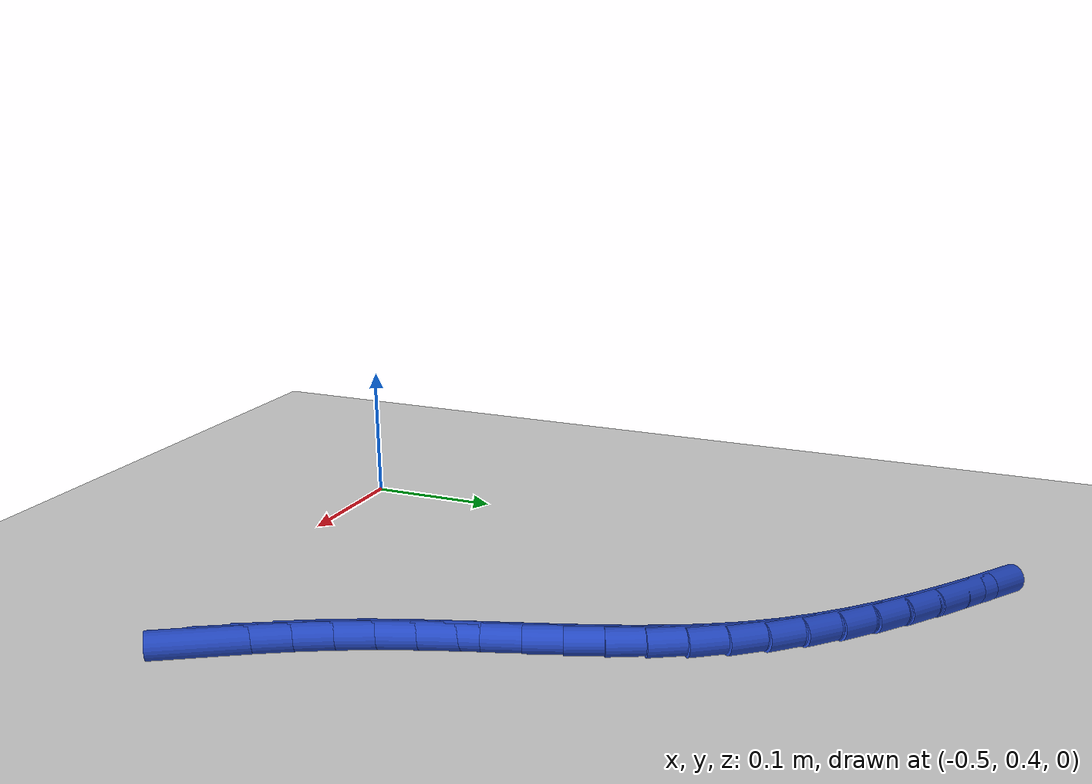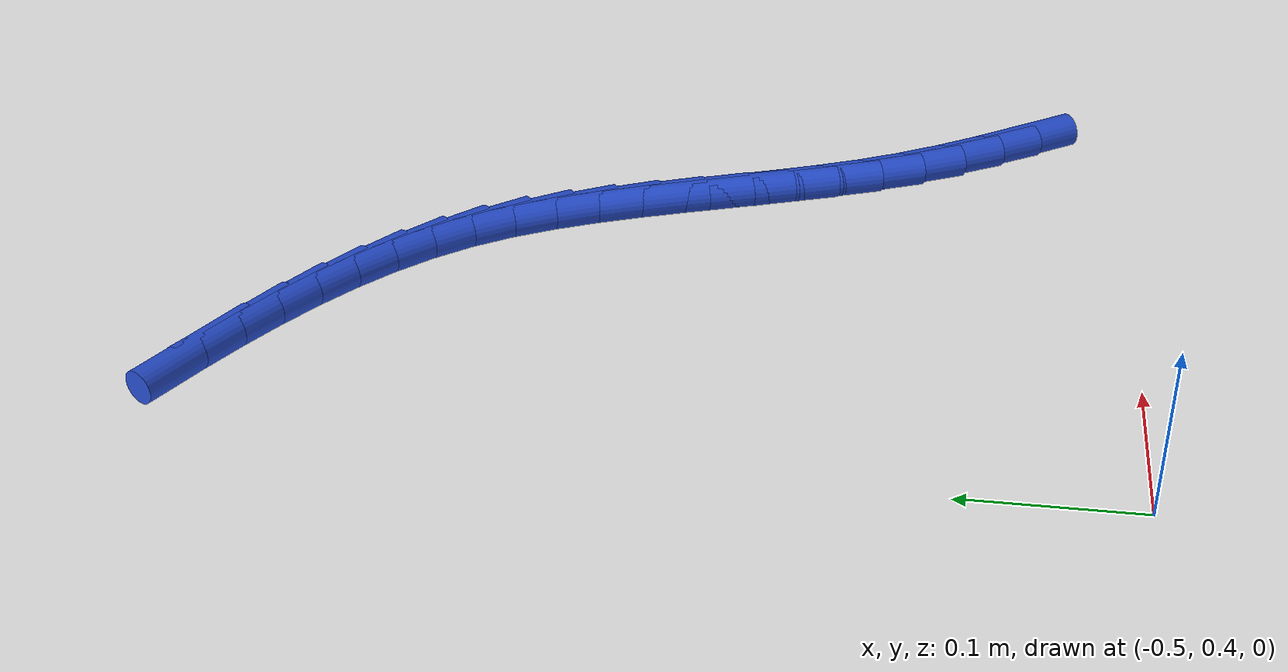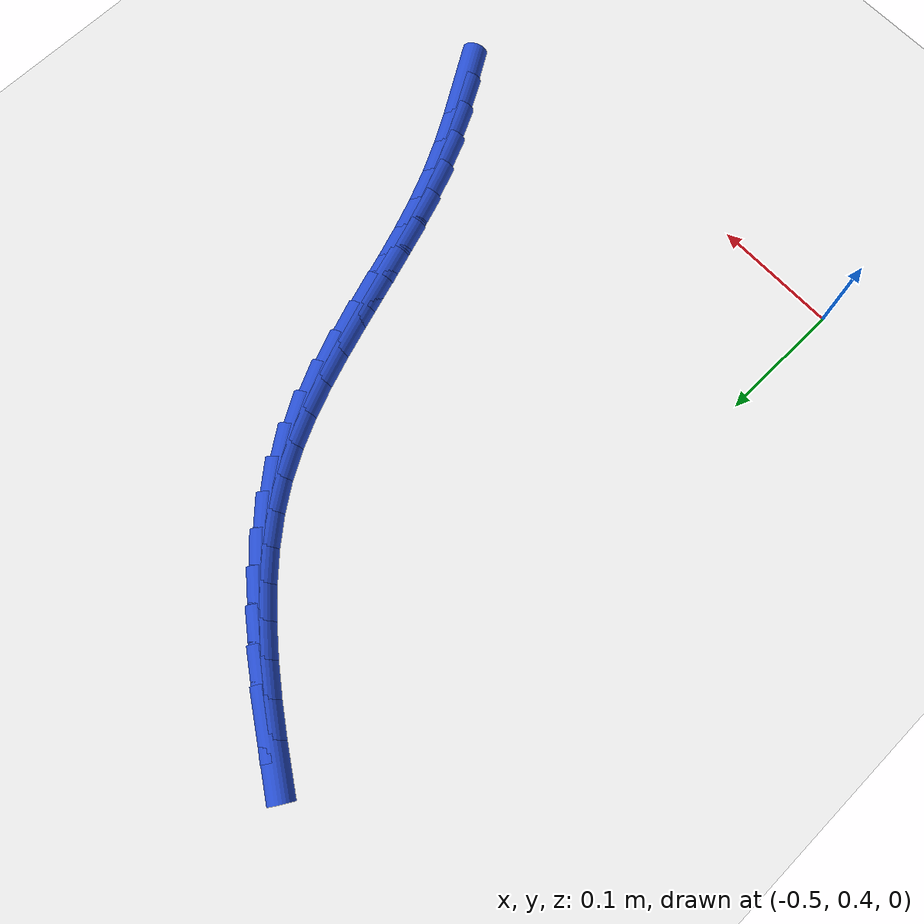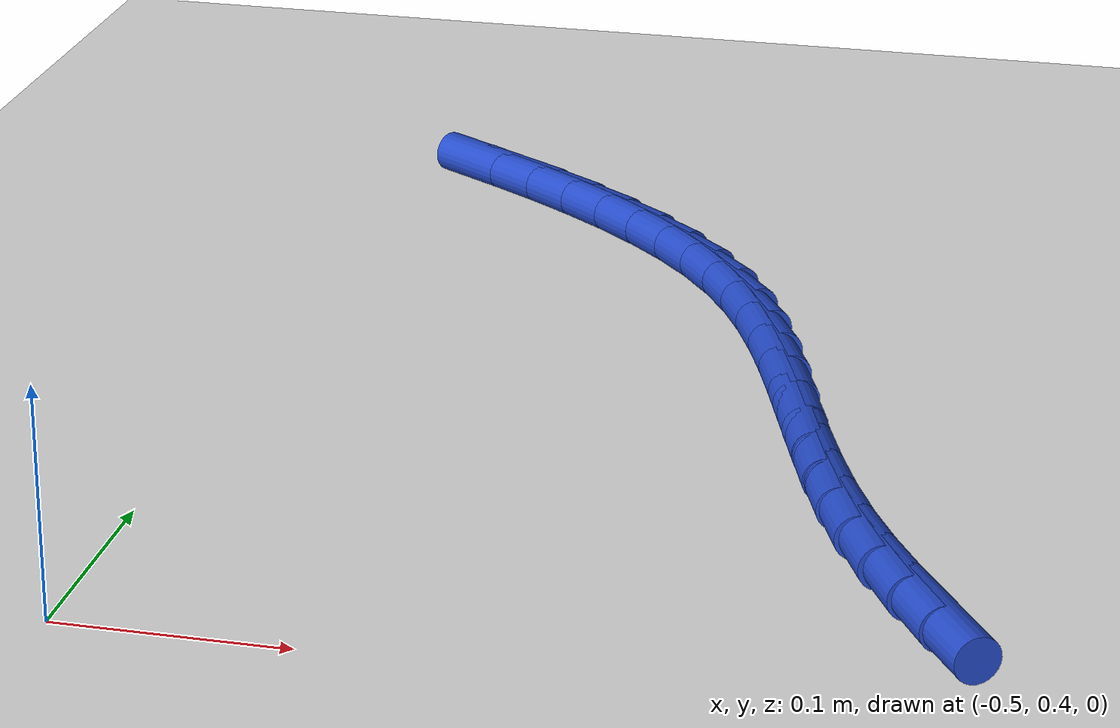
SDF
<sdf version="1.6">
 <world name="default">
  <model name="ground_plane">
   <static>1</static>
   <link name="link">
    <collision name="collision">
     <geometry><plane><normal>0 0 1</normal><size>100 100</size></plane></geometry>
     <surface><friction><ode><mu>100</mu><mu2>50</mu2></ode></friction></surface>
    </collision>
    <visual name="visual">
     <cast_shadows>0</cast_shadows>
     <geometry><plane><normal>0 0 1</normal><size>100 100</size></plane></geometry>
     <material>
      <script><uri>file://media/materials/scripts/gazebo.material</uri><name>Gazebo/WhiteGlow</name></script>
     </material>
    </visual>
   </link>
  </model>
  <model name="line">
   <link name="link_19">
    <pose>-0.1650506412324501 0.46543690449173725 0.01 0 1.57 -1.0102571729452525</pose>
    <collision name="collision">
     <geometry><cylinder><radius>0.01</radius><length>0.08</length></cylinder></geometry>
    </collision>
    <visual name="visual">
     <material>
      <script><name>Gazebo/Blue</name><uri>file://media/materials/scripts/gazebo.material</uri></script>
     </material>
     <geometry><cylinder><radius>0.01</radius><length>0.08</length></cylinder></geometry>
    </visual>
   </link>
   <link name="link_20">
    <pose>-0.1793875184568729 0.4882772063053949 0.01 0 1.57 -1.0474625991430766</pose>
    <collision name="collision">
     <geometry><cylinder><radius>0.01</radius><length>0.08</length></cylinder></geometry>
    </collision>
    <visual name="visual">
     <material>
      <script><name>Gazebo/Blue</name><uri>file://media/materials/scripts/gazebo.material</uri></script>
     </material>
     <geometry><cylinder><radius>0.01</radius><length>0.08</length></cylinder></geometry>
    </visual>
   </link>
   <link name="link_21">
    <pose>-0.19284925741167855 0.5116079007137067 0.01 0 1.57 -1.0947844968803022</pose>
    <collision name="collision">
     <geometry><cylinder><radius>0.01</radius><length>0.08</length></cylinder></geometry>
    </collision>
    <visual name="visual">
     <material>
      <script><name>Gazebo/Blue</name><uri>file://media/materials/scripts/gazebo.material</uri></script>
     </material>
     <geometry><cylinder><radius>0.01</radius><length>0.08</length></cylinder></geometry>
    </visual>
   </link>
   <link name="link_22">
    <pose>-0.20518962186332285 0.5355441075858185 0.01 0 1.57 -1.15091348865228</pose>
    <collision name="collision">
     <geometry><cylinder><radius>0.01</radius><length>0.08</length></cylinder></geometry>
    </collision>
    <visual name="visual">
     <material>
      <script><name>Gazebo/Blue</name><uri>file://media/materials/scripts/gazebo.material</uri></script>
     </material>
     <geometry><cylinder><radius>0.01</radius><length>0.08</length></cylinder></geometry>
    </visual>
   </link>
   <link name="link_23">
    <pose>-0.21619031697764615 0.560185473931487 0.01 0 1.57 -1.201039827232103</pose>
    <collision name="collision">
     <geometry><cylinder><radius>0.01</radius><length>0.08</length></cylinder></geometry>
    </collision>
    <visual name="visual">
     <material>
      <script><name>Gazebo/Blue</name><uri>file://media/materials/scripts/gazebo.material</uri></script>
     </material>
     <geometry><cylinder><radius>0.01</radius><length>0.08</length></cylinder></geometry>
    </visual>
   </link>
   <link name="link_24">
    <pose>-0.22597864702055695 0.5854402674309478 0.01 0 1.57 -1.2355131958768812</pose>
    <collision name="collision">
     <geometry><cylinder><radius>0.01</radius><length>0.08</length></cylinder></geometry>
    </collision>
    <visual name="visual">
     <material>
      <script><name>Gazebo/Blue</name><uri>file://media/materials/scripts/gazebo.material</uri></script>
     </material>
     <geometry><cylinder><radius>0.01</radius><length>0.08</length></cylinder></geometry>
    </visual>
   </link>
   <link name="link_25">
    <pose>-0.23491516458343212 0.6110875919207465 0.01 0 1.57 -1.2544896879528846</pose>
    <collision name="collision">
     <geometry><cylinder><radius>0.01</radius><length>0.08</length></cylinder></geometry>
    </collision>
    <visual name="visual">
     <material>
      <script><name>Gazebo/Blue</name><uri>file://media/materials/scripts/gazebo.material</uri></script>
     </material>
     <geometry><cylinder><radius>0.01</radius><length>0.08</length></cylinder></geometry>
    </visual>
   </link>
   <link name="link_26">
    <pose>-0.24336479887652204 0.636904127636252 0.01 0 1.57 -1.2581489119808016</pose>
    <collision name="collision">
     <geometry><cylinder><radius>0.01</radius><length>0.08</length></cylinder></geometry>
    </collision>
    <visual name="visual">
     <material>
      <script><name>Gazebo/Blue</name><uri>file://media/materials/scripts/gazebo.material</uri></script>
     </material>
     <geometry><cylinder><radius>0.01</radius><length>0.08</length></cylinder></geometry>
    </visual>
   </link>
   <link name="link_27">
    <pose>-0.25169247911007714 0.6626665548128341 0.01 0 1.57 -1.2463763810399993</pose>
    <collision name="collision">
     <geometry><cylinder><radius>0.01</radius><length>0.08</length></cylinder></geometry>
    </collision>
    <visual name="visual">
     <material>
      <script><name>Gazebo/Blue</name><uri>file://media/materials/scripts/gazebo.material</uri></script>
     </material>
     <geometry><cylinder><radius>0.01</radius><length>0.08</length></cylinder></geometry>
    </visual>
   </link>
   <link name="link_28">
    <pose>-0.2602631344943479 0.6881515536858619 0.01 0 1.57 -1.2187283245380092</pose>
    <collision name="collision">
     <geometry><cylinder><radius>0.01</radius><length>0.08</length></cylinder></geometry>
    </collision>
    <visual name="visual">
     <material>
      <script><name>Gazebo/Blue</name><uri>file://media/materials/scripts/gazebo.material</uri></script>
     </material>
     <geometry><cylinder><radius>0.01</radius><length>0.08</length></cylinder></geometry>
    </visual>
   </link>
   <link name="link_29">
    <pose>-0.2694416942395844 0.7131358044907046 0.01 0 1.57 -1.174496473592519</pose>
    <collision name="collision">
     <geometry><cylinder><radius>0.01</radius><length>0.08</length></cylinder></geometry>
    </collision>
    <visual name="visual">
     <material>
      <script><name>Gazebo/Blue</name><uri>file://media/materials/scripts/gazebo.material</uri></script>
     </material>
     <geometry><cylinder><radius>0.01</radius><length>0.08</length></cylinder></geometry>
    </visual>
   </link>
   <link name="link_30">
    <pose>-0.27959308755603707 0.737395987462731 0.01 0 1.57 -1.1129042188250629</pose>
    <collision name="collision">
     <geometry><cylinder><radius>0.01</radius><length>0.08</length></cylinder></geometry>
    </collision>
    <visual name="visual">
     <material>
      <script><name>Gazebo/Blue</name><uri>file://media/materials/scripts/gazebo.material</uri></script>
     </material>
     <geometry><cylinder><radius>0.01</radius><length>0.08</length></cylinder></geometry>
    </visual>
   </link>
   <link name="link_31">
    <pose>-0.2910822436539564 0.760708782837311 0.01 0 1.57 -1.0334855148487176</pose>
    <collision name="collision">
     <geometry><cylinder><radius>0.01</radius><length>0.08</length></cylinder></geometry>
    </collision>
    <visual name="visual">
     <material>
      <script><name>Gazebo/Blue</name><uri>file://media/materials/scripts/gazebo.material</uri></script>
     </material>
     <geometry><cylinder><radius>0.01</radius><length>0.08</length></cylinder></geometry>
    </visual>
   </link>
   <link name="link_32">
    <pose>-0.30427406672204727 0.7828508858808201 0.01 0 1.57 -0.941879065706948</pose>
    <collision name="collision">
     <geometry><cylinder><radius>0.01</radius><length>0.08</length></cylinder></geometry>
    </collision>
    <visual name="visual">
     <material>
      <script><name>Gazebo/Blue</name><uri>file://media/materials/scripts/gazebo.material</uri></script>
     </material>
     <geometry><cylinder><radius>0.01</radius><length>0.08</length></cylinder></geometry>
    </visual>
   </link>
   <link name="link_33">
    <pose>-0.3194179253571463 0.803668396692331 0.01 0 1.57 -0.856585667237983</pose>
    <collision name="collision">
     <geometry><cylinder><radius>0.01</radius><length>0.08</length></cylinder></geometry>
    </collision>
    <visual name="visual">
     <material>
      <script><name>Gazebo/Blue</name><uri>file://media/materials/scripts/gazebo.material</uri></script>
     </material>
     <geometry><cylinder><radius>0.01</radius><length>0.08</length></cylinder></geometry>
    </visual>
   </link>
   <link name="link_34">
    <pose>-0.3363813264708986 0.8232368082873882 0.01 0 1.57 -0.7818985462586857</pose>
    <collision name="collision">
     <geometry><cylinder><radius>0.01</radius><length>0.08</length></cylinder></geometry>
    </collision>
    <visual name="visual">
     <material>
      <script><name>Gazebo/Blue</name><uri>file://media/materials/scripts/gazebo.material</uri></script>
     </material>
     <geometry><cylinder><radius>0.01</radius><length>0.08</length></cylinder></geometry>
    </visual>
   </link>
   <link name="link_35">
    <pose>-0.3549529935180553 0.841678940678841 0.01 0 1.57 -0.717867649920996</pose>
    <collision name="collision">
     <geometry><cylinder><radius>0.01</radius><length>0.08</length></cylinder></geometry>
    </collision>
    <visual name="visual">
     <material>
      <script><name>Gazebo/Blue</name><uri>file://media/materials/scripts/gazebo.material</uri></script>
     </material>
     <geometry><cylinder><radius>0.01</radius><length>0.08</length></cylinder></geometry>
    </visual>
   </link>
   <link name="link_36">
    <pose>-0.374921649953368 0.8591176138795393 0.01 0 1.57 -0.6641177099415944</pose>
    <collision name="collision">
     <geometry><cylinder><radius>0.01</radius><length>0.08</length></cylinder></geometry>
    </collision>
    <visual name="visual">
     <material>
      <script><name>Gazebo/Blue</name><uri>file://media/materials/scripts/gazebo.material</uri></script>
     </material>
     <geometry><cylinder><radius>0.01</radius><length>0.08</length></cylinder></geometry>
    </visual>
   </link>
   <link name="link_37">
    <pose>-0.39607601923158775 0.8756756479023325 0.01 0 1.57 -0.6200676844374162</pose>
    <collision name="collision">
     <geometry><cylinder><radius>0.01</radius><length>0.08</length></cylinder></geometry>
    </collision>
    <visual name="visual">
     <material>
      <script><name>Gazebo/Blue</name><uri>file://media/materials/scripts/gazebo.material</uri></script>
     </material>
     <geometry><cylinder><radius>0.01</radius><length>0.08</length></cylinder></geometry>
    </visual>
   </link>
   <link name="link_38">
    <pose>-0.4182048248074661 0.8914758627600707 0.01 0 1.57 -0.5850908429274463</pose>
    <collision name="collision">
     <geometry><cylinder><radius>0.01</radius><length>0.08</length></cylinder></geometry>
    </collision>
    <visual name="visual">
     <material>
      <script><name>Gazebo/Blue</name><uri>file://media/materials/scripts/gazebo.material</uri></script>
     </material>
     <geometry><cylinder><radius>0.01</radius><length>0.08</length></cylinder></geometry>
    </visual>
   </link>
   <link name="link_39">
    <pose>-0.4410967901357544 0.9066410784656037 0.01 0 1.57 -0.5586186770879736</pose>
    <collision name="collision">
     <geometry><cylinder><radius>0.01</radius><length>0.08</length></cylinder></geometry>
    </collision>
    <visual name="visual">
     <material>
      <script><name>Gazebo/Blue</name><uri>file://media/materials/scripts/gazebo.material</uri></script>
     </material>
     <geometry><cylinder><radius>0.01</radius><length>0.08</length></cylinder></geometry>
    </visual>
   </link>
  </model>
 </world>
</sdf>
